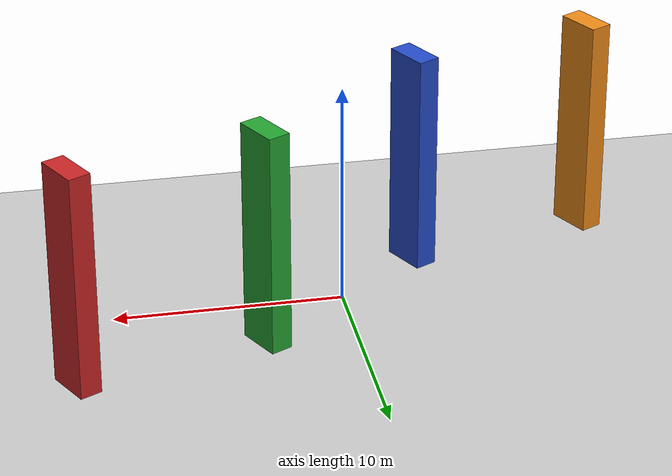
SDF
<?xml version="1.0" ?>
<sdf version="1.4">
  <world name="default">
    <scene>
      <shadows>false</shadows>
      <grid>false</grid>
    </scene>
    <include>
      <uri>model://ground_plane</uri>
    </include>
    <include>
      <uri>model://sun</uri>
    </include>

    <!-- Only one ROS interface plugin is required per world -->
    <plugin name="ros_interface_plugin" filename="librotors_gazebo_ros_interface_plugin.so"/>

    <spherical_coordinates>
      <surface_model>EARTH_WGS84</surface_model>
      <latitude_deg>47.3667</latitude_deg>
      <longitude_deg>8.5500</longitude_deg>
      <elevation>500.0</elevation>
      <heading_deg>0</heading_deg>
    </spherical_coordinates>

    <physics type='ode'>
      <ode>
        <solver>
          <type>quick</type>
          <iters>1000</iters>
          <sor>1.3</sor>
        </solver>
        <constraints>
          <cfm>0</cfm>
          <erp>0.2</erp>
          <contact_max_correcting_vel>100</contact_max_correcting_vel>
          <contact_surface_layer>0.001</contact_surface_layer>
        </constraints>
      </ode>
      <max_step_size>0.001</max_step_size>
      <real_time_factor>1.0</real_time_factor>
      <real_time_update_rate>1000</real_time_update_rate>
      <gravity>0 0 -9.81</gravity>
    </physics>

    <!-- Wall 1: Centered -->
    <model name="wall_1_centered">
      <static>true</static>
      <pose>12.0 5.0 5.0 0 0 -2.6779</pose>
      <link name="link">
        <collision name="collision">
          <geometry>
            <box>
              <size>1.0 2.0 10.0</size> <!-- length_along_traj, width_perp_traj, height -->
            </box>
          </geometry>
        </collision>
        <visual name="visual">
          <geometry>
            <box>
              <size>1.0 2.0 10.0</size>
            </box>
          </geometry>
          <material>
            <script>
              <uri>file://media/materials/scripts/gazebo.material</uri>
              <name>Gazebo/Red</name>
            </script>
          </material>
        </visual>
      </link>
    </model>

    <!-- Wall 2: Tangent Right -->
    <model name="wall_2_tangent_right">
      <static>true</static>
      <pose>3.7764 3.0 5.0 0 0 -2.6779</pose>
      <link name="link">
        <collision name="collision">
          <geometry>
            <box>
              <size>1.0 2.0 10.0</size>
            </box>
          </geometry>
        </collision>
        <visual name="visual">
          <geometry>
            <box>
              <size>1.0 2.0 10.0</size>
            </box>
          </geometry>
          <material>
            <script>
              <uri>file://media/materials/scripts/gazebo.material</uri>
              <name>Gazebo/Green</name>
            </script>
          </material>
        </visual>
      </link>
    </model>

    <!-- Wall 3: Tangent Left -->
    <model name="wall_3_tangent_left">
      <static>true</static>
      <pose>-3.7764 -3.0 5.0 0 0 -2.6779</pose>
      <link name="link">
        <collision name="collision">
          <geometry>
            <box>
              <size>1.0 2.0 10.0</size>
            </box>
          </geometry>
        </collision>
        <visual name="visual">
          <geometry>
            <box>
              <size>1.0 2.0 10.0</size>
            </box>
          </geometry>
          <material>
            <script>
              <uri>file://media/materials/scripts/gazebo.material</uri>
              <name>Gazebo/Blue</name>
            </script>
          </material>
        </visual>
      </link>
    </model>

    <!-- Wall 4: Centered -->
    <model name="wall_4_centered">
      <static>true</static>
      <pose>-12.0 -5.0 5.0 0 0 -2.6779</pose>
      <link name="link">
        <collision name="collision">
          <geometry>
            <box>
              <size>1.0 2.0 10.0</size>
            </box>
          </geometry>
        </collision>
        <visual name="visual">
          <geometry>
            <box>
              <size>1.0 2.0 10.0</size>
            </box>
          </geometry>
          <material>
            <script>
              <uri>file://media/materials/scripts/gazebo.material</uri>
              <name>Gazebo/Orange</name>
            </script>
          </material>
        </visual>
      </link>
    </model>

  </world>
</sdf>
